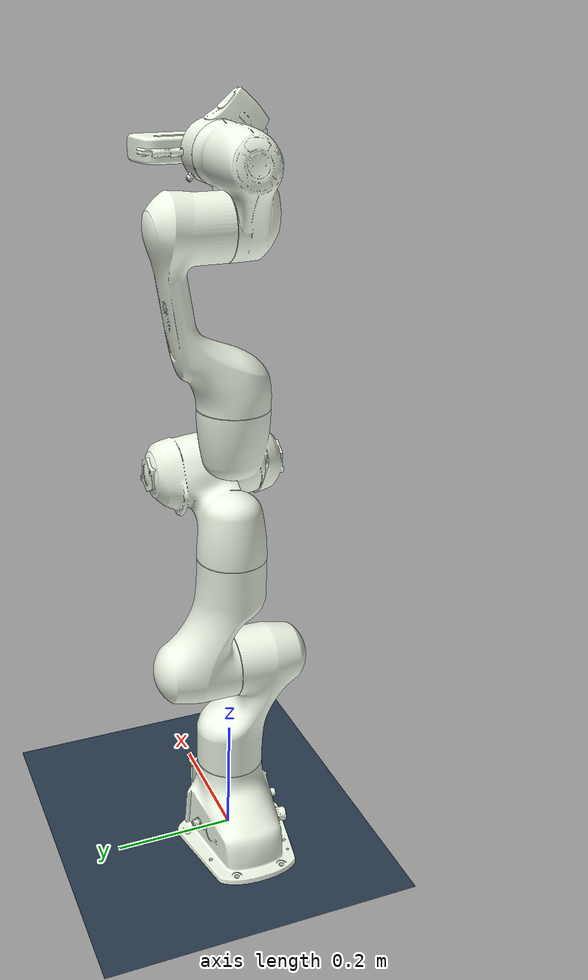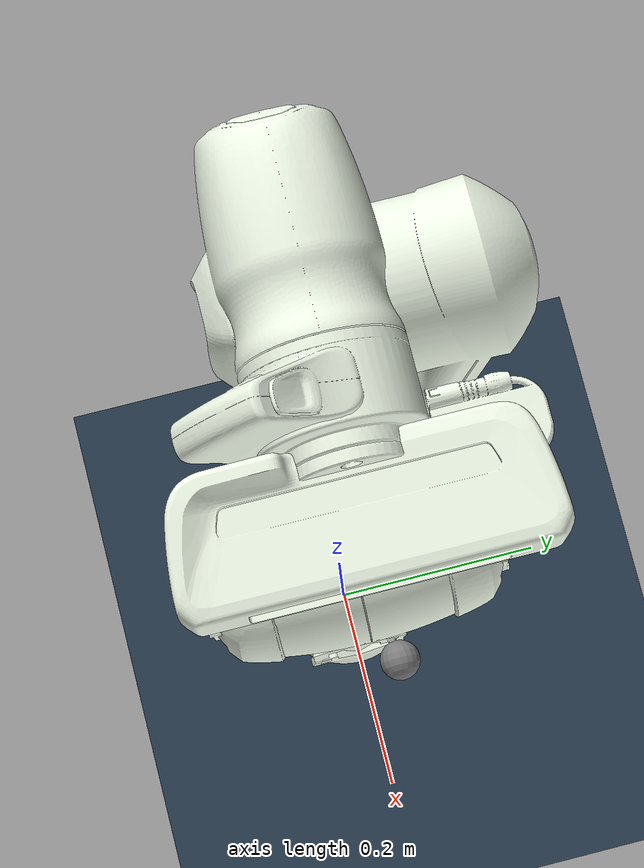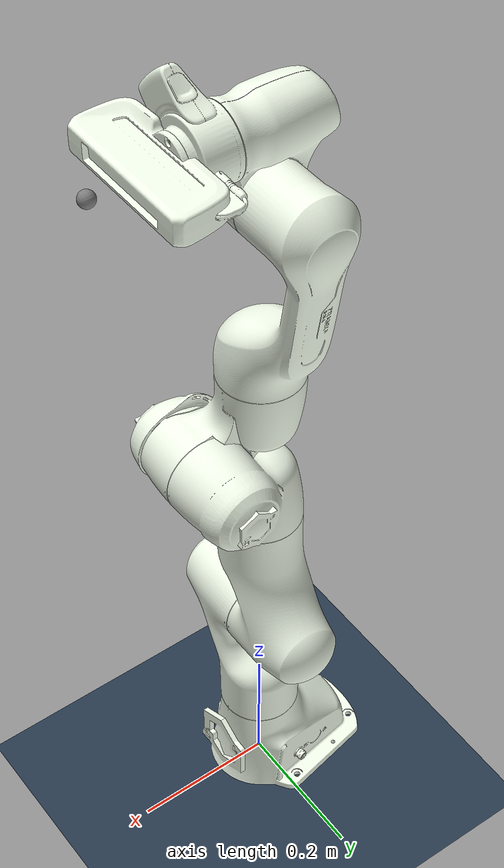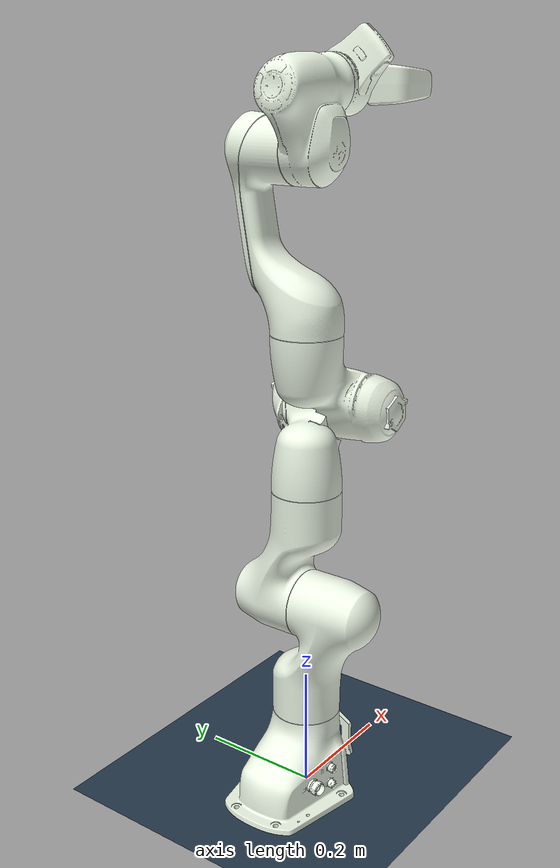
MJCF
<mujoco model="franka_panda v200">
    <size njmax="8000" nconmax="4000" nuser_actuator="5"/>
    <compiler angle="radian" coordinate="local" balanceinertia="true" inertiafromgeom="auto"  meshdir=''/>
    <option timestep="0.002"/>

    <include file="../worlds/world.xml"/>

    <include file="assets/assets.xml"/>

    <worldbody>
        <include file="assets/chain0.xml"/>
    </worldbody>

    <include file='assets/actuators0.xml'/>

</mujoco>

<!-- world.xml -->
<mujoco>
    <statistic extent="2" meansize=".05"/>
    <option timestep="0.001" solver="Newton" iterations="50" tolerance="1e-5" jacobian="sparse" cone="pyramidal" gravity='0 0 -9.81'/>

    <visual>
        <rgba haze="0.15 0.25 0.35 1"/>
        <quality shadowsize="2048"/>
        <map stiffness="700" shadowscale="0.5" fogstart="10" fogend="15" zfar="40" haze="0.3"/>
        <headlight ambient=".2 .2 .2" diffuse=".8 .8 .8" specular="0.1 0.1 0.1"/>
    </visual>

    <asset>
        <texture name="skybox" type="skybox" builtin="gradient" rgb1=".1 .1 .30" rgb2="0 0 0" width="800" height="800" mark="random" markrgb="1 1 1"/>
        <texture name="texplane" type="2d" builtin="checker" rgb1=".2 .3 .4" rgb2=".1 0.15 0.2"
            width="512" height="512" mark="cross" markrgb=".8 .8 .8"/>
        <material name="matplane" reflectance="0.0" texture="texplane" texrepeat="1 1" texuniform="true"/>
    </asset>

    <worldbody>
        <geom name="ground" type="plane" size="0 0 1" pos="0 0 0" quat="1 0 0 0" material="matplane" condim="6"/>
        <light mode='trackcom' pos='0 0 5' dir='0 0 -1'/>
        <light directional='true' pos='0 0 3' dir='0 0 -1' diffuse='0.2 0.2 0.2' specular='0 0 0'/>
    </worldbody>
</mujoco>

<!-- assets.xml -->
<!-- Modified from the original source code at
        1) https://github.com/vikashplus/franka
    which was originally written by Vikash Kumar and licensed under the Apache License= -->
<mujocoinclude>
    <asset>
        <mesh name="link0_col" file="./meshes/collision/link0.stl"/>
        <mesh name="link1_col" file="./meshes/collision/link1.stl"/>
        <mesh name="link2_col" file="./meshes/collision/link2.stl"/>
        <mesh name="link3_col" file="./meshes/collision/link3.stl"/>
        <mesh name="link4_col" file="./meshes/collision/link4.stl"/>
        <mesh name="link5_col" file="./meshes/collision/link5.stl"/>
        <mesh name="link6_col" file="./meshes/collision/link6.stl"/>
        <mesh name="link7_col" file="./meshes/collision/link7.stl"/>
        <mesh name="hand_col" file="./meshes/collision/hand.stl"/>
        <mesh name="finger_col" file="./meshes/collision/finger.stl" scale='1.75 1.0 1.75'/>
        <mesh name="link0_viz" file="./meshes/visual/link0.stl"/>
        <mesh name="link1_viz" file="./meshes/visual/link1.stl"/>
        <mesh name="link2_viz" file="./meshes/visual/link2.stl"/>
        <mesh name="link3_viz" file="./meshes/visual/link3.stl"/>
        <mesh name="link4_viz" file="./meshes/visual/link4.stl"/>
        <mesh name="link5_viz" file="./meshes/visual/link5.stl"/>
        <mesh name="link6_viz" file="./meshes/visual/link6.stl"/>
        <mesh name="link7_viz" file="./meshes/visual/link7.stl"/>
        <mesh name="hand_viz" file="./meshes/visual/hand.stl"/>
        <mesh name="finger_viz" file="./meshes/collision/finger.stl" scale='1.75 1.0 1.75'/>

    </asset>

    <default>
        <default class="panda">
            <joint pos="0 0 0" axis="0 0 1" limited="true"/>
            <position forcelimited="true" ctrllimited="true" user="1002 40 2001 -0.005 0.005"/>
            <default class="panda_viz">
                <geom contype="0" conaffinity="0" group="0" type="mesh" rgba=".95 .99 .92 1" mass="0"/>
            </default>

            <default class="panda_col">
                <geom contype="1" conaffinity="1" group="3" type="mesh" rgba=".5 .6 .7 1"/>
            </default>
            <default class="panda_arm">
                <joint stiffness="0" damping="50"/>
            </default>
            <default class="panda_forearm">
                <joint stiffness="0" damping="50"/>
            </default>
             <default class="panda_finger">
                <joint damping="100" armature='5'/>
                <geom friction="1 0.5 0.0001" solref="0.01 1" solimp="0.8 0.9 0.001" margin="0.001" user="0" rgba="0.5 0.6 0.7 .4" contype="1" conaffinity="0" condim="6" group="3" />
                <position user="1002 40 2001 -0.0001 0.0001"/>
            </default>
        </default>

        <default class="panda_overlay">
            <joint limited="false" damping="1000" armature="1" frictionloss="10"/>
            <geom contype="0" conaffinity="0" group="2" type="mesh" rgba=".42 0.42 0.42 .5"/>
        </default>
    </default>
</mujocoinclude>

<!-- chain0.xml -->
<!-- Robot limits pulled from https://frankaemika.github.io/docs/control_parameters.html#constants -->
<!-- Modified from the original source code at
        1) https://github.com/vikashplus/franka
    which was originally written by Vikash Kumar and licensed under the Apache License= -->
<mujocoinclude>
	<body name="panda0_link0" childclass="panda" >
        <camera name="cam_root" mode="trackcom" pos="0 3 0" xyaxes="-1 0 0 0 0 1"/>
        <geom class="panda_viz" mesh="link0_viz"/>
        <geom class="panda_col" mesh="link0_col" mass="2.91242"/>
        <site name="panda0_link0_s0" pos="0 0 0" size="0.01 0.01"/>
        <site name="panda0_link0_s1" pos="0 0 0.14" size="0.01 0.01"/>

        <body name="panda0_link1" pos="0 0 0.333">
            <!--joint is designed in such a way that it always align with body's z axis-->
            <!--thus it's also a good choice to let the site have the same orientation as the body-->
            <joint name="panda0_joint1" range="-2.8973 2.8973" class="panda_arm"/>
            <geom class="panda_viz" mesh="link1_viz"/>
            <geom class="panda_col" mesh="link1_col" mass="2.7063"/>
            <site name="panda0_link1_s0" pos="0 0 -0.193" size="0.01 0.01"/>
            <site name="panda0_link1_s1" pos="0 0 0" size="0.01 0.01"/>

            <body name="panda0_link2" pos="0 0 0" quat="0.707107 -0.707107 0 0">
                <joint name="panda0_joint2" range="-1.7628 1.7628" class="panda_arm"/>
                <geom class="panda_viz" mesh="link2_viz"/>
                <geom class="panda_col" mesh="link2_col" mass="2.73046"/>
                <site name="panda0_link2_s0" pos="0 0 0" size="0.01 0.01"/>
                <site name="panda0_link2_s1" pos="0 -0.194 0" size="0.01 0.01"/>

                <body name="panda0_link3" pos="0 -0.316 0" quat="0.707107 0.707107 0 0">
                    <joint name="panda0_joint3" range="-2.8973 2.8973" class="panda_arm"/>
                    <geom class="panda_viz" mesh="link3_viz"/>
                    <geom class="panda_col" mesh="link3_col" mass="2.04104"/>
                    <site name="panda0_link3_s0" pos="0 0 -0.122" size="0.01 0.01"/>
                    <site name="panda0_link3_s1" pos="0.0825 0 0" size="0.01 0.01"/>

                    <body name="panda0_link4" pos="0.0825 0 0" quat="0.707107 0.707107 0 0">
                        <joint name="panda0_joint4" range="-3.0718 -0.4" class="panda_arm"/>
                        <geom class="panda_viz" mesh="link4_viz"/>
                        <geom class="panda_col" mesh="link4_col" mass="2.08129"/>
                        <site name="panda0_link4_s0" pos="0 0 0" size="0.01 0.01"/>
                        <site name="panda0_link4_s1" pos="-0.0825 0.125 0" size="0.01 0.01"/>

                        <body name="panda0_link5" pos="-0.0825 0.384 0" quat="0.707107 -0.707107 0 0">
                            <joint name="panda0_joint5" range="-2.8973 2.8973" class="panda_forearm"/>
                            <geom class="panda_viz" mesh="link5_viz"/>
                            <geom class="panda_col" mesh="link5_col" mass="3.00049"/>
                            <site name="panda0_link5_s0" pos="0 0 -0.259" size="0.01 0.01"/>
                            <site name="panda0_link5_s1" pos="0 0 0" size="0.01 0.01"/>

                            <body name="panda0_link6" pos="0 0 0" euler='1.57 0 1.57'>
                                <joint name="panda0_joint6" range="-1.6573 2.1127" class="panda_forearm"/>
                                <geom class="panda_viz" mesh="link6_viz"/>
                                <geom class="panda_col" mesh="link6_col" mass="1.3235"/>
                                <site name="panda0_link6_s0" pos="0 0 0" size="0.01 0.01"/>
                                <site name="panda0_link6_s1" pos="0.088 -0.05 0" size="0.01 0.01"/>

                                <body name="panda0_link7" pos="0.088 0 0" euler='1.57 0 0'>
                                    <joint name="panda0_joint7" range="-2.8973 2.8973" class="panda_forearm"/>
                                    <geom class="panda_viz" mesh="link7_viz"/>
                                    <geom class="panda_col" mesh="link7_col" mass="0.2"/>
                                    <geom pos="0 0 0.107" quat="1 0 0 0" class="panda_viz" mesh="hand_viz"/>
                                    <geom pos="0 0 0.107" quat="1 0 0 0" class="panda_col" mesh="hand_col" mass="0.81909"/>

                                    <site name="panda0_link7_s0" pos="0 0 0.05" size="0.01 0.01"/>
                                    <site name="panda0_link7_s1" pos="0 0 0.21" size="0.01 0.01"/>

                                    <site name='end_effector0' pos='0 0 .210' size='0.01' euler='0 0 0'/>
                                    <site name='tip0' pos='0 0 .210' size='0.01' euler='0 0 0'/>

                                </body>
                            </body>
                        </body>
                    </body>
                </body>
            </body>
        </body>
    </body>
</mujocoinclude>

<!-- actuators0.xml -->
<!-- Modified from the original source code at
        1) https://github.com/vikashplus/franka
    which was originally written by Vikash Kumar and licensed under the Apache License= -->

<mujocoinclude>
	<actuator>
        <position name="panda0_joint1_position" joint="panda0_joint1" class="panda" kp="2000" forcerange="-87 87" ctrlrange="-2.9671 2.9671"/> <!-- velocity="2.1750" -->
        <position name="panda0_joint2_position" joint="panda0_joint2" class="panda" kp="2000" forcerange="-87 87" ctrlrange="-1.8326 1.8326"/> <!-- velocity="2.1750" -->
        <position name="panda0_joint3_position" joint="panda0_joint3" class="panda" kp="2000" forcerange="-87 87" ctrlrange="-2.9671 2.9671"/> <!-- velocity="2.1750" -->
        <position name="panda0_joint4_position" joint="panda0_joint4" class="panda" kp="2000" forcerange="-87 87" ctrlrange="-3.1416 0.0"/> <!-- velocity="2.1750" -->
        <position name="panda0_joint5_position" joint="panda0_joint5" class="panda" kp="2000" forcerange="-12 12" ctrlrange="-2.9671 2.9671"/> <!-- velocity="2.6100" -->
        <position name="panda0_joint6_position" joint="panda0_joint6" class="panda" kp="2000" forcerange="-12 12" ctrlrange="-3.7525 2.1817"/> <!-- velocity="2.6100" -->
        <position name="panda0_joint7_position" joint="panda0_joint7" class="panda" kp="2000" forcerange="-12 12" ctrlrange="-2.9671 2.9671"/> <!-- velocity="2.9671" -->
    </actuator>
</mujocoinclude>
